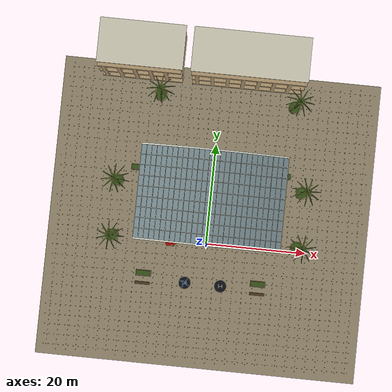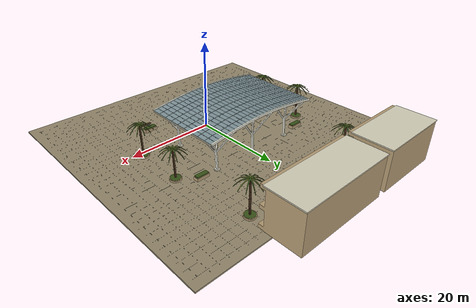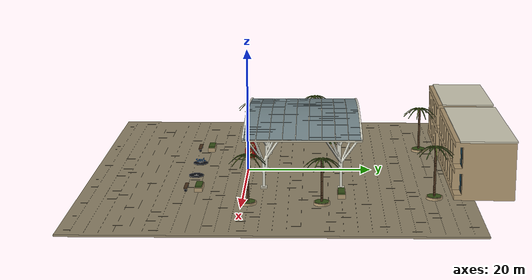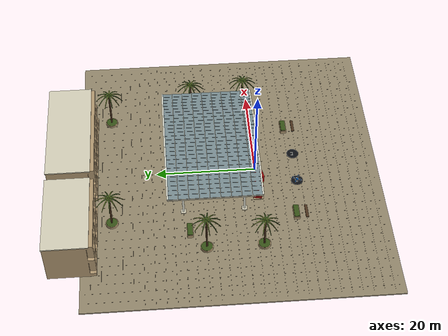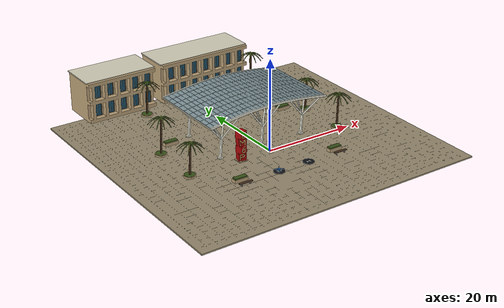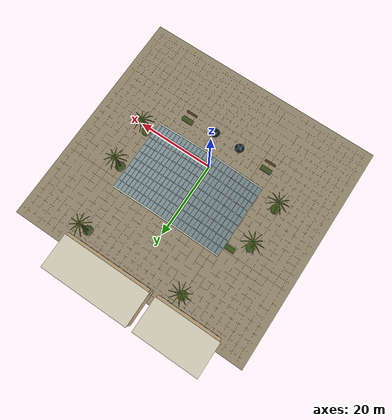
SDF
<sdf version="1.10">
 <world name="um6p_campus">
  <plugin filename="gz-sim-scene-broadcaster-system" name="gz::sim::systems::SceneBroadcaster"/>
  <scene><ambient>.65 .65 .65 1</ambient><background>.55 .72 .86 1</background><shadows>true</shadows></scene>
  <light name="warm_sun" type="directional">
   <pose>0 0 20 0 0 0</pose>
   <diffuse>.95 .86 .72 1</diffuse>
   <specular>.2 .2 .2 1</specular>
   <direction>-.45 .5 -.85</direction>
  </light>
  <include><uri>model://courtyard</uri><name>courtyard</name></include>
  <include><uri>model://pergola</uri><name>pergola</name></include>
  <include><uri>model://campus_buildings</uri><name>campus_buildings</name><pose>0 12 0 0 0 0</pose></include>
  <include><uri>model://um6p_landmark</uri><name>um6p_landmark</name><pose>-7 0 0 0 0 0</pose></include>
  <include><uri>model://landscaping</uri><name>landscaping</name></include>
  <include><uri>model://uav_1</uri><name>uav_1</name><pose>-3.6 -8.2 0.12 0 0 0.3</pose></include>
 </world>
</sdf>

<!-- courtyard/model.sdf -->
<sdf version="1.10">
  <model name="courtyard">
    <static>true</static>
    <link name="body">
      <visual name="dark">
        <geometry>
          <mesh>
            <uri>model://courtyard/meshes/dark.obj</uri>
          </mesh>
        </geometry>
        <material>
          <ambient>0.055 0.065 0.08 1</ambient>
          <diffuse>0.055 0.065 0.08 1</diffuse>
          <specular>.08 .08 .08 1</specular>
        </material>
      </visual>
      <visual name="joint">
        <geometry>
          <mesh>
            <uri>model://courtyard/meshes/joint.obj</uri>
          </mesh>
        </geometry>
        <material>
          <ambient>0.43 0.39 0.31 1</ambient>
          <diffuse>0.43 0.39 0.31 1</diffuse>
          <specular>.08 .08 .08 1</specular>
        </material>
      </visual>
      <visual name="paving">
        <geometry>
          <mesh>
            <uri>model://courtyard/meshes/paving.obj</uri>
          </mesh>
        </geometry>
        <material>
          <ambient>0.6 0.55 0.44 1</ambient>
          <diffuse>0.6 0.55 0.44 1</diffuse>
          <specular>.08 .08 .08 1</specular>
        </material>
      </visual>
      <visual name="white">
        <geometry>
          <mesh>
            <uri>model://courtyard/meshes/white.obj</uri>
          </mesh>
        </geometry>
        <material>
          <ambient>0.94 0.94 0.88 1</ambient>
          <diffuse>0.94 0.94 0.88 1</diffuse>
          <specular>.08 .08 .08 1</specular>
        </material>
      </visual>
    </link>
  </model>
</sdf>

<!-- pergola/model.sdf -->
<sdf version="1.10">
  <model name="pergola">
    <static>true</static>
    <link name="body">
      <visual name="ivory">
        <geometry>
          <mesh>
            <uri>model://pergola/meshes/ivory.obj</uri>
          </mesh>
        </geometry>
        <material>
          <ambient>0.86 0.84 0.75 1</ambient>
          <diffuse>0.86 0.84 0.75 1</diffuse>
          <specular>.08 .08 .08 1</specular>
        </material>
      </visual>
      <visual name="roof">
        <geometry>
          <mesh>
            <uri>model://pergola/meshes/roof.obj</uri>
          </mesh>
        </geometry>
        <material>
          <ambient>0.5 0.58 0.6 1</ambient>
          <diffuse>0.5 0.58 0.6 1</diffuse>
          <specular>.08 .08 .08 1</specular>
        </material>
      </visual>
      <visual name="white">
        <geometry>
          <mesh>
            <uri>model://pergola/meshes/white.obj</uri>
          </mesh>
        </geometry>
        <material>
          <ambient>0.94 0.94 0.88 1</ambient>
          <diffuse>0.94 0.94 0.88 1</diffuse>
          <specular>.08 .08 .08 1</specular>
        </material>
      </visual>
    </link>
  </model>
</sdf>

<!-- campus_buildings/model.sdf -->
<sdf version="1.10">
  <model name="campus_buildings">
    <static>true</static>
    <link name="body">
      <visual name="glass">
        <geometry>
          <mesh>
            <uri>model://campus_buildings/meshes/glass.obj</uri>
          </mesh>
        </geometry>
        <material>
          <ambient>0.1 0.3 0.39 1</ambient>
          <diffuse>0.1 0.3 0.39 1</diffuse>
          <specular>.08 .08 .08 1</specular>
        </material>
      </visual>
      <visual name="ivory">
        <geometry>
          <mesh>
            <uri>model://campus_buildings/meshes/ivory.obj</uri>
          </mesh>
        </geometry>
        <material>
          <ambient>0.86 0.84 0.75 1</ambient>
          <diffuse>0.86 0.84 0.75 1</diffuse>
          <specular>.08 .08 .08 1</specular>
        </material>
      </visual>
      <visual name="recess">
        <geometry>
          <mesh>
            <uri>model://campus_buildings/meshes/recess.obj</uri>
          </mesh>
        </geometry>
        <material>
          <ambient>0.28 0.25 0.2 1</ambient>
          <diffuse>0.28 0.25 0.2 1</diffuse>
          <specular>.08 .08 .08 1</specular>
        </material>
      </visual>
      <visual name="stone">
        <geometry>
          <mesh>
            <uri>model://campus_buildings/meshes/stone.obj</uri>
          </mesh>
        </geometry>
        <material>
          <ambient>0.72 0.62 0.46 1</ambient>
          <diffuse>0.72 0.62 0.46 1</diffuse>
          <specular>.08 .08 .08 1</specular>
        </material>
      </visual>
    </link>
  </model>
</sdf>

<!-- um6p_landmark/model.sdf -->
<sdf version="1.10">
  <model name="um6p_landmark">
    <static>true</static>
    <link name="body">
      <visual name="letter">
        <geometry>
          <mesh>
            <uri>model://um6p_landmark/meshes/letter.obj</uri>
          </mesh>
        </geometry>
        <material>
          <ambient>0.98 0.83 0.48 1</ambient>
          <diffuse>0.98 0.83 0.48 1</diffuse>
          <specular>.08 .08 .08 1</specular>
        </material>
      </visual>
      <visual name="red">
        <geometry>
          <mesh>
            <uri>model://um6p_landmark/meshes/red.obj</uri>
          </mesh>
        </geometry>
        <material>
          <ambient>0.65 0.025 0.025 1</ambient>
          <diffuse>0.65 0.025 0.025 1</diffuse>
          <specular>.08 .08 .08 1</specular>
        </material>
      </visual>
      <visual name="stone">
        <geometry>
          <mesh>
            <uri>model://um6p_landmark/meshes/stone.obj</uri>
          </mesh>
        </geometry>
        <material>
          <ambient>0.72 0.62 0.46 1</ambient>
          <diffuse>0.72 0.62 0.46 1</diffuse>
          <specular>.08 .08 .08 1</specular>
        </material>
      </visual>
    </link>
  </model>
</sdf>

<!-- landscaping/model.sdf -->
<sdf version="1.10">
  <model name="landscaping">
    <static>true</static>
    <link name="body">
      <visual name="dark">
        <geometry>
          <mesh>
            <uri>model://landscaping/meshes/dark.obj</uri>
          </mesh>
        </geometry>
        <material>
          <ambient>0.055 0.065 0.08 1</ambient>
          <diffuse>0.055 0.065 0.08 1</diffuse>
          <specular>.08 .08 .08 1</specular>
        </material>
      </visual>
      <visual name="green">
        <geometry>
          <mesh>
            <uri>model://landscaping/meshes/green.obj</uri>
          </mesh>
        </geometry>
        <material>
          <ambient>0.23 0.34 0.1 1</ambient>
          <diffuse>0.23 0.34 0.1 1</diffuse>
          <specular>.08 .08 .08 1</specular>
        </material>
      </visual>
      <visual name="leaf">
        <geometry>
          <mesh>
            <uri>model://landscaping/meshes/leaf.obj</uri>
          </mesh>
        </geometry>
        <material>
          <ambient>0.36 0.43 0.14 1</ambient>
          <diffuse>0.36 0.43 0.14 1</diffuse>
          <specular>.08 .08 .08 1</specular>
        </material>
      </visual>
      <visual name="stone">
        <geometry>
          <mesh>
            <uri>model://landscaping/meshes/stone.obj</uri>
          </mesh>
        </geometry>
        <material>
          <ambient>0.72 0.62 0.46 1</ambient>
          <diffuse>0.72 0.62 0.46 1</diffuse>
          <specular>.08 .08 .08 1</specular>
        </material>
      </visual>
      <visual name="trunk">
        <geometry>
          <mesh>
            <uri>model://landscaping/meshes/trunk.obj</uri>
          </mesh>
        </geometry>
        <material>
          <ambient>0.31 0.21 0.12 1</ambient>
          <diffuse>0.31 0.21 0.12 1</diffuse>
          <specular>.08 .08 .08 1</specular>
        </material>
      </visual>
    </link>
  </model>
</sdf>

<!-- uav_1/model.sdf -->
<sdf version="1.10">
  <model name="uav_1">
    <static>true</static>
    <link name="body">
      <visual name="blue">
        <geometry>
          <mesh>
            <uri>model://uav_1/meshes/blue.obj</uri>
          </mesh>
        </geometry>
        <material>
          <ambient>0.025 0.35 0.7 1</ambient>
          <diffuse>0.025 0.35 0.7 1</diffuse>
          <specular>.08 .08 .08 1</specular>
        </material>
      </visual>
      <visual name="dark">
        <geometry>
          <mesh>
            <uri>model://uav_1/meshes/dark.obj</uri>
          </mesh>
        </geometry>
        <material>
          <ambient>0.055 0.065 0.08 1</ambient>
          <diffuse>0.055 0.065 0.08 1</diffuse>
          <specular>.08 .08 .08 1</specular>
        </material>
      </visual>
      <visual name="white">
        <geometry>
          <mesh>
            <uri>model://uav_1/meshes/white.obj</uri>
          </mesh>
        </geometry>
        <material>
          <ambient>0.94 0.94 0.88 1</ambient>
          <diffuse>0.94 0.94 0.88 1</diffuse>
          <specular>.08 .08 .08 1</specular>
        </material>
      </visual>
      <collision name="placeholder_body">
        <pose>0 0 .36 0 0 0</pose>
        <geometry>
          <box>
            <size>.65 .45 .24</size>
          </box>
        </geometry>
      </collision>
    </link>
  </model>
</sdf>
